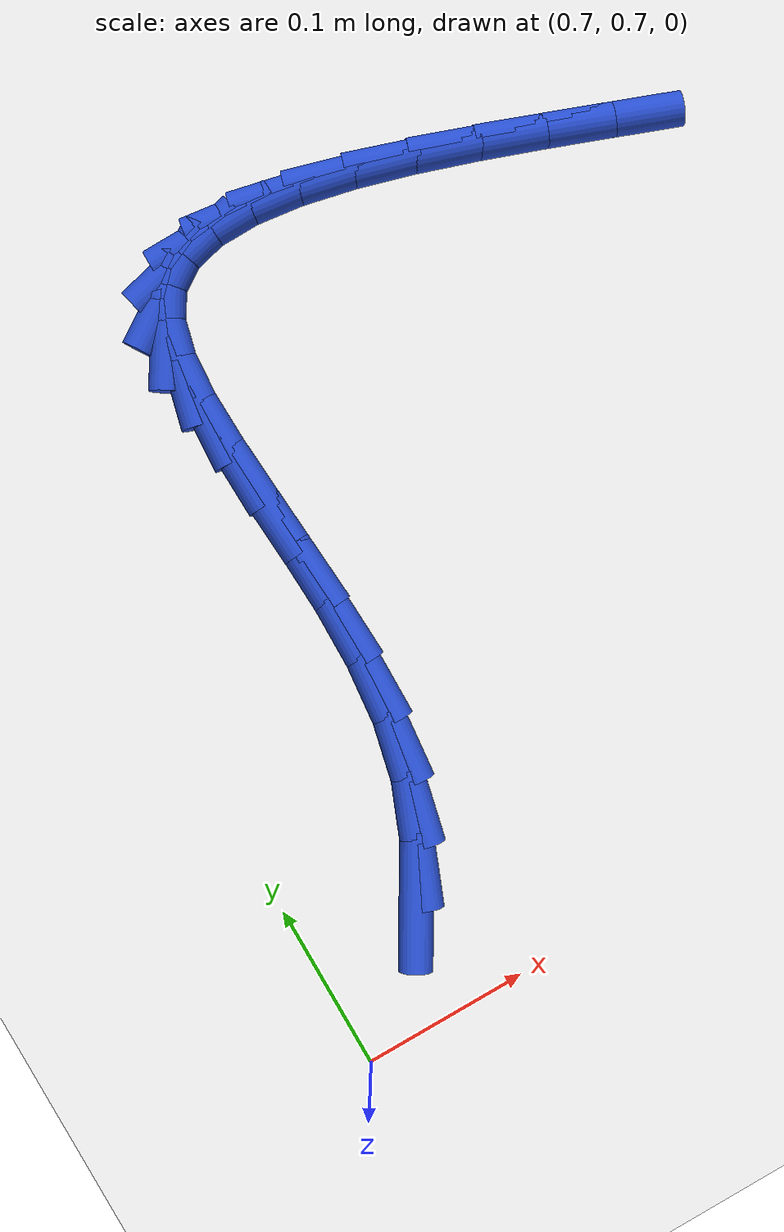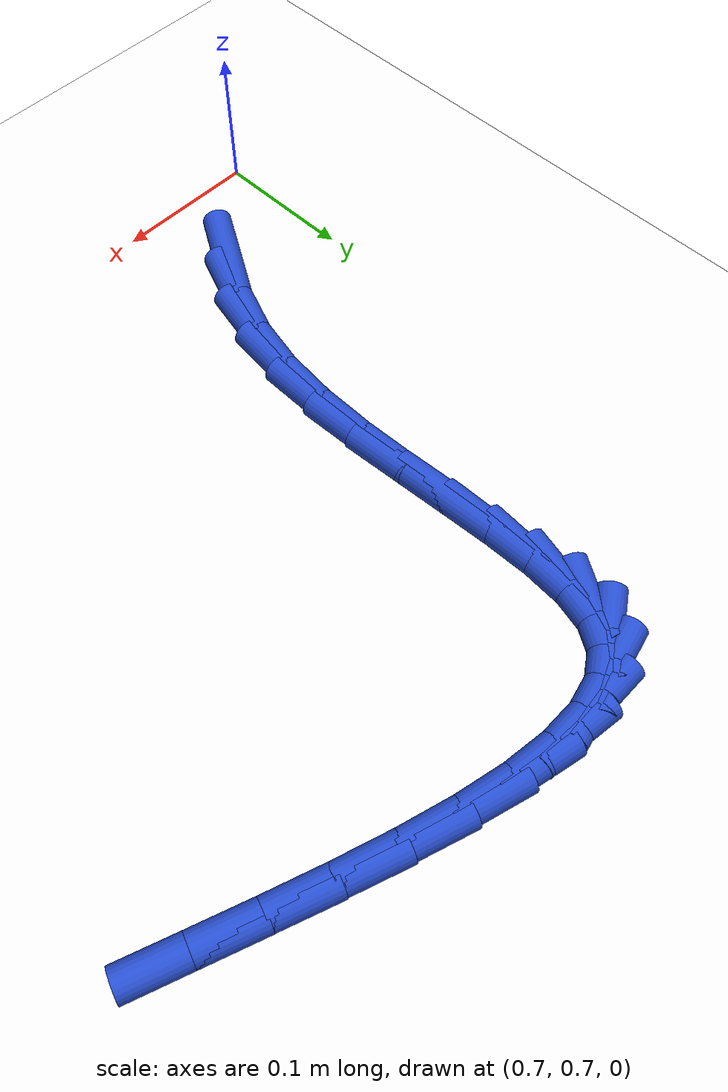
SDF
<sdf version="1.6">
 <world name="default">
  <model name="ground_plane">
   <static>1</static>
   <link name="link">
    <collision name="collision">
     <geometry><plane><normal>0 0 1</normal><size>100 100</size></plane></geometry>
     <surface><friction><ode><mu>100</mu><mu2>50</mu2></ode></friction></surface>
    </collision>
    <visual name="visual">
     <cast_shadows>0</cast_shadows>
     <geometry><plane><normal>0 0 1</normal><size>100 100</size></plane></geometry>
     <material>
      <script><uri>file://media/materials/scripts/gazebo.material</uri><name>Gazebo/WhiteGlow</name></script>
     </material>
    </visual>
   </link>
  </model>
  <model name="line">
   <link name="link_40">
    <pose>0.7703497196372007 0.7689525552697178 0.01 0 1.57 1.0311234679835855</pose>
    <collision name="collision">
     <geometry><cylinder><radius>0.01</radius><length>0.08</length></cylinder></geometry>
    </collision>
    <visual name="visual">
     <material>
      <script><name>Gazebo/Blue</name><uri>file://media/materials/scripts/gazebo.material</uri></script>
     </material>
     <geometry><cylinder><radius>0.01</radius><length>0.08</length></cylinder></geometry>
    </visual>
   </link>
   <link name="link_41">
    <pose>0.7884794700792074 0.7992200073301946 0.01 0 1.57 1.1856080579545223</pose>
    <collision name="collision">
     <geometry><cylinder><radius>0.01</radius><length>0.08</length></cylinder></geometry>
    </collision>
    <visual name="visual">
     <material>
      <script><name>Gazebo/Blue</name><uri>file://media/materials/scripts/gazebo.material</uri></script>
     </material>
     <geometry><cylinder><radius>0.01</radius><length>0.08</length></cylinder></geometry>
    </visual>
   </link>
   <link name="link_42">
    <pose>0.8017671260717915 0.8319933298188698 0.01 0 1.57 1.3430135921492847</pose>
    <collision name="collision">
     <geometry><cylinder><radius>0.01</radius><length>0.08</length></cylinder></geometry>
    </collision>
    <visual name="visual">
     <material>
      <script><name>Gazebo/Blue</name><uri>file://media/materials/scripts/gazebo.material</uri></script>
     </material>
     <geometry><cylinder><radius>0.01</radius><length>0.08</length></cylinder></geometry>
    </visual>
   </link>
   <link name="link_43">
    <pose>0.8098789465952891 0.8669873735201795 0.01 0 1.57 1.4679632716919528</pose>
    <collision name="collision">
     <geometry><cylinder><radius>0.01</radius><length>0.08</length></cylinder></geometry>
    </collision>
    <visual name="visual">
     <material>
      <script><name>Gazebo/Blue</name><uri>file://media/materials/scripts/gazebo.material</uri></script>
     </material>
     <geometry><cylinder><radius>0.01</radius><length>0.08</length></cylinder></geometry>
    </visual>
   </link>
   <link name="link_44">
    <pose>0.8136420272085151 0.90345236860229 0.01 0 1.57 1.5554794061181378</pose>
    <collision name="collision">
     <geometry><cylinder><radius>0.01</radius><length>0.08</length></cylinder></geometry>
    </collision>
    <visual name="visual">
     <material>
      <script><name>Gazebo/Blue</name><uri>file://media/materials/scripts/gazebo.material</uri></script>
     </material>
     <geometry><cylinder><radius>0.01</radius><length>0.08</length></cylinder></geometry>
    </visual>
   </link>
   <link name="link_45">
    <pose>0.8142096496187313 0.9405079904144377 0.01 0 1.57 -1.5307117296640975</pose>
    <collision name="collision">
     <geometry><cylinder><radius>0.01</radius><length>0.08</length></cylinder></geometry>
    </collision>
    <visual name="visual">
     <material>
      <script><name>Gazebo/Blue</name><uri>file://media/materials/scripts/gazebo.material</uri></script>
     </material>
     <geometry><cylinder><radius>0.01</radius><length>0.08</length></cylinder></geometry>
    </visual>
   </link>
   <link name="link_46">
    <pose>0.8127351128144593 0.9772739073890978 0.01 0 1.57 -1.5044983936337826</pose>
    <collision name="collision">
     <geometry><cylinder><radius>0.01</radius><length>0.08</length></cylinder></geometry>
    </collision>
    <visual name="visual">
     <material>
      <script><name>Gazebo/Blue</name><uri>file://media/materials/scripts/gazebo.material</uri></script>
     </material>
     <geometry><cylinder><radius>0.01</radius><length>0.08</length></cylinder></geometry>
    </visual>
   </link>
   <link name="link_47">
    <pose>0.810371715784221 1.0128697879587452 0.01 0 1.57 -1.5083073278987087</pose>
    <collision name="collision">
     <geometry><cylinder><radius>0.01</radius><length>0.08</length></cylinder></geometry>
    </collision>
    <visual name="visual">
     <material>
      <script><name>Gazebo/Blue</name><uri>file://media/materials/scripts/gazebo.material</uri></script>
     </material>
     <geometry><cylinder><radius>0.01</radius><length>0.08</length></cylinder></geometry>
    </visual>
   </link>
   <link name="link_48">
    <pose>0.8082727575165376 1.0464153005558545 0.01 0 1.57 -1.5485486612729897</pose>
    <collision name="collision">
     <geometry><cylinder><radius>0.01</radius><length>0.08</length></cylinder></geometry>
    </collision>
    <visual name="visual">
     <material>
      <script><name>Gazebo/Blue</name><uri>file://media/materials/scripts/gazebo.material</uri></script>
     </material>
     <geometry><cylinder><radius>0.01</radius><length>0.08</length></cylinder></geometry>
    </visual>
   </link>
   <link name="link_49">
    <pose>0.8075915369999307 1.077030113612902 0.01 0 1.57 1.5004072270525526</pose>
    <collision name="collision">
     <geometry><cylinder><radius>0.01</radius><length>0.08</length></cylinder></geometry>
    </collision>
    <visual name="visual">
     <material>
      <script><name>Gazebo/Blue</name><uri>file://media/materials/scripts/gazebo.material</uri></script>
     </material>
     <geometry><cylinder><radius>0.01</radius><length>0.08</length></cylinder></geometry>
    </visual>
   </link>
   <link name="link_50">
    <pose>0.8094813532229218 1.1038338955623614 0.01 0 1.57 1.322158584535501</pose>
    <collision name="collision">
     <geometry><cylinder><radius>0.01</radius><length>0.08</length></cylinder></geometry>
    </collision>
    <visual name="visual">
     <material>
      <script><name>Gazebo/Blue</name><uri>file://media/materials/scripts/gazebo.material</uri></script>
     </material>
     <geometry><cylinder><radius>0.01</radius><length>0.08</length></cylinder></geometry>
    </visual>
   </link>
   <link name="link_51">
    <pose>0.8150955051740326 1.1259463148367086 0.01 0 1.57 1.0056260838000772</pose>
    <collision name="collision">
     <geometry><cylinder><radius>0.01</radius><length>0.08</length></cylinder></geometry>
    </collision>
    <visual name="visual">
     <material>
      <script><name>Gazebo/Blue</name><uri>file://media/materials/scripts/gazebo.material</uri></script>
     </material>
     <geometry><cylinder><radius>0.01</radius><length>0.08</length></cylinder></geometry>
    </visual>
   </link>
   <link name="link_52">
    <pose>0.825585951825242 1.142488181364428 0.01 0 1.57 0.5797126730652775</pose>
    <collision name="collision">
     <geometry><cylinder><radius>0.01</radius><length>0.08</length></cylinder></geometry>
    </collision>
    <visual name="visual">
     <material>
      <script><name>Gazebo/Blue</name><uri>file://media/materials/scripts/gazebo.material</uri></script>
     </material>
     <geometry><cylinder><radius>0.01</radius><length>0.08</length></cylinder></geometry>
    </visual>
   </link>
   <link name="link_53">
    <pose>0.8416243518515992 1.1529894499278184 0.01 0 1.57 0.23317377622062826</pose>
    <collision name="collision">
     <geometry><cylinder><radius>0.01</radius><length>0.08</length></cylinder></geometry>
    </collision>
    <visual name="visual">
     <material>
      <script><name>Gazebo/Blue</name><uri>file://media/materials/scripts/gazebo.material</uri></script>
     </material>
     <geometry><cylinder><radius>0.01</radius><length>0.08</length></cylinder></geometry>
    </visual>
   </link>
   <link name="link_54">
    <pose>0.8626931081235847 1.1579931454559542 0.01 0 1.57 0.008000935523754983</pose>
    <collision name="collision">
     <geometry><cylinder><radius>0.01</radius><length>0.08</length></cylinder></geometry>
    </collision>
    <visual name="visual">
     <material>
      <script><name>Gazebo/Blue</name><uri>file://media/materials/scripts/gazebo.material</uri></script>
     </material>
     <geometry><cylinder><radius>0.01</radius><length>0.08</length></cylinder></geometry>
    </visual>
   </link>
   <link name="link_55">
    <pose>0.888093740326428 1.158196378613145 0.01 0 1.57 -0.1335299036963079</pose>
    <collision name="collision">
     <geometry><cylinder><radius>0.01</radius><length>0.08</length></cylinder></geometry>
    </collision>
    <visual name="visual">
     <material>
      <script><name>Gazebo/Blue</name><uri>file://media/materials/scripts/gazebo.material</uri></script>
     </material>
     <geometry><cylinder><radius>0.01</radius><length>0.08</length></cylinder></geometry>
    </visual>
   </link>
   <link name="link_56">
    <pose>0.9171277681453605 1.1542962600637015 0.01 0 1.57 -0.2246865717283937</pose>
    <collision name="collision">
     <geometry><cylinder><radius>0.01</radius><length>0.08</length></cylinder></geometry>
    </collision>
    <visual name="visual">
     <material>
      <script><name>Gazebo/Blue</name><uri>file://media/materials/scripts/gazebo.material</uri></script>
     </material>
     <geometry><cylinder><radius>0.01</radius><length>0.08</length></cylinder></geometry>
    </visual>
   </link>
   <link name="link_57">
    <pose>0.9490967112656128 1.1469899004719326 0.01 0 1.57 -0.2848424513717335</pose>
    <collision name="collision">
     <geometry><cylinder><radius>0.01</radius><length>0.08</length></cylinder></geometry>
    </collision>
    <visual name="visual">
     <material>
      <script><name>Gazebo/Blue</name><uri>file://media/materials/scripts/gazebo.material</uri></script>
     </material>
     <geometry><cylinder><radius>0.01</radius><length>0.08</length></cylinder></geometry>
    </visual>
   </link>
   <link name="link_58">
    <pose>0.9833020893724163 1.1369744105021486 0.01 0 1.57 -0.32459478083452775</pose>
    <collision name="collision">
     <geometry><cylinder><radius>0.01</radius><length>0.08</length></cylinder></geometry>
    </collision>
    <visual name="visual">
     <material>
      <script><name>Gazebo/Blue</name><uri>file://media/materials/scripts/gazebo.material</uri></script>
     </material>
     <geometry><cylinder><radius>0.01</radius><length>0.08</length></cylinder></geometry>
    </visual>
   </link>
   <link name="link_59">
    <pose>1.0190454221510012 1.1249469008186597 0.01 0 1.57 -0.34972623825474436</pose>
    <collision name="collision">
     <geometry><cylinder><radius>0.01</radius><length>0.08</length></cylinder></geometry>
    </collision>
    <visual name="visual">
     <material>
      <script><name>Gazebo/Blue</name><uri>file://media/materials/scripts/gazebo.material</uri></script>
     </material>
     <geometry><cylinder><radius>0.01</radius><length>0.08</length></cylinder></geometry>
    </visual>
   </link>
   <link name="link_60">
    <pose>1.0556282292865977 1.111604482085775 0.01 0 1.57 -0.3632700847111157</pose>
    <collision name="collision">
     <geometry><cylinder><radius>0.01</radius><length>0.08</length></cylinder></geometry>
    </collision>
    <visual name="visual">
     <material>
      <script><name>Gazebo/Blue</name><uri>file://media/materials/scripts/gazebo.material</uri></script>
     </material>
     <geometry><cylinder><radius>0.01</radius><length>0.08</length></cylinder></geometry>
    </visual>
   </link>
   <link name="link_61">
    <pose>1.0923520304644376 1.0976442649678047 0.01 0 1.57 -0.36646991413991964</pose>
    <collision name="collision">
     <geometry><cylinder><radius>0.01</radius><length>0.08</length></cylinder></geometry>
    </collision>
    <visual name="visual">
     <material>
      <script><name>Gazebo/Blue</name><uri>file://media/materials/scripts/gazebo.material</uri></script>
     </material>
     <geometry><cylinder><radius>0.01</radius><length>0.08</length></cylinder></geometry>
    </visual>
   </link>
  </model>
 </world>
</sdf>
